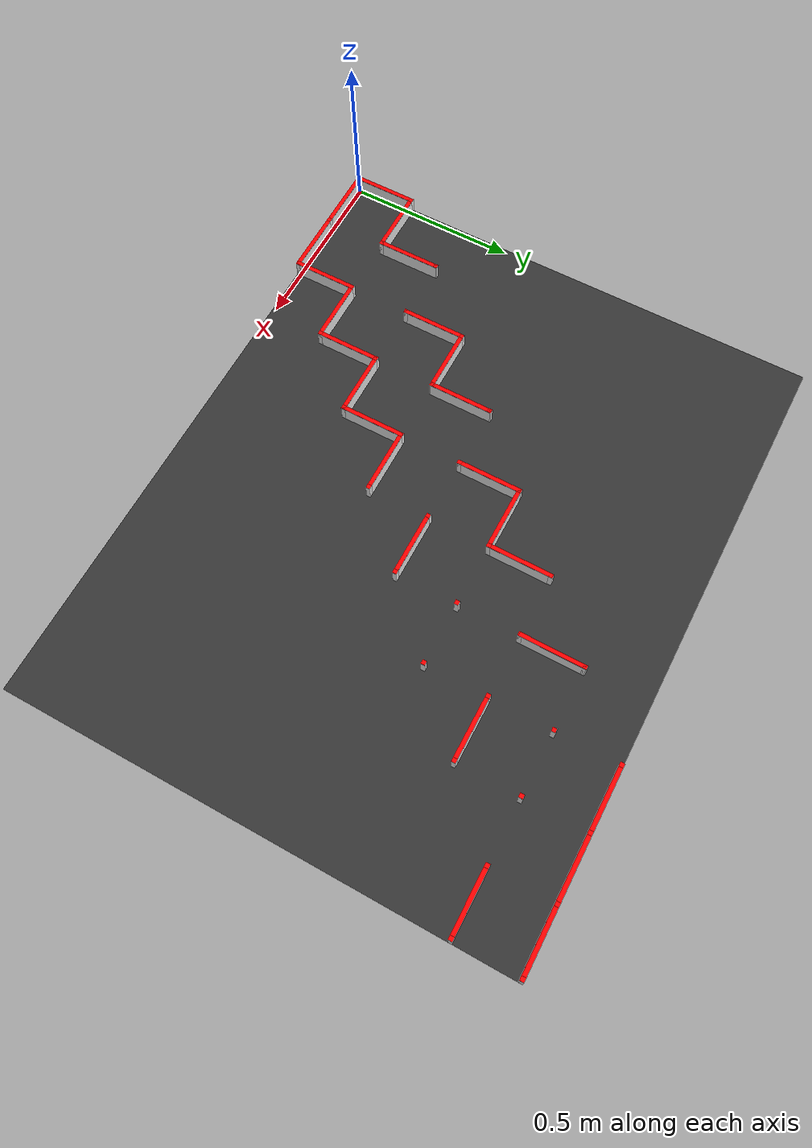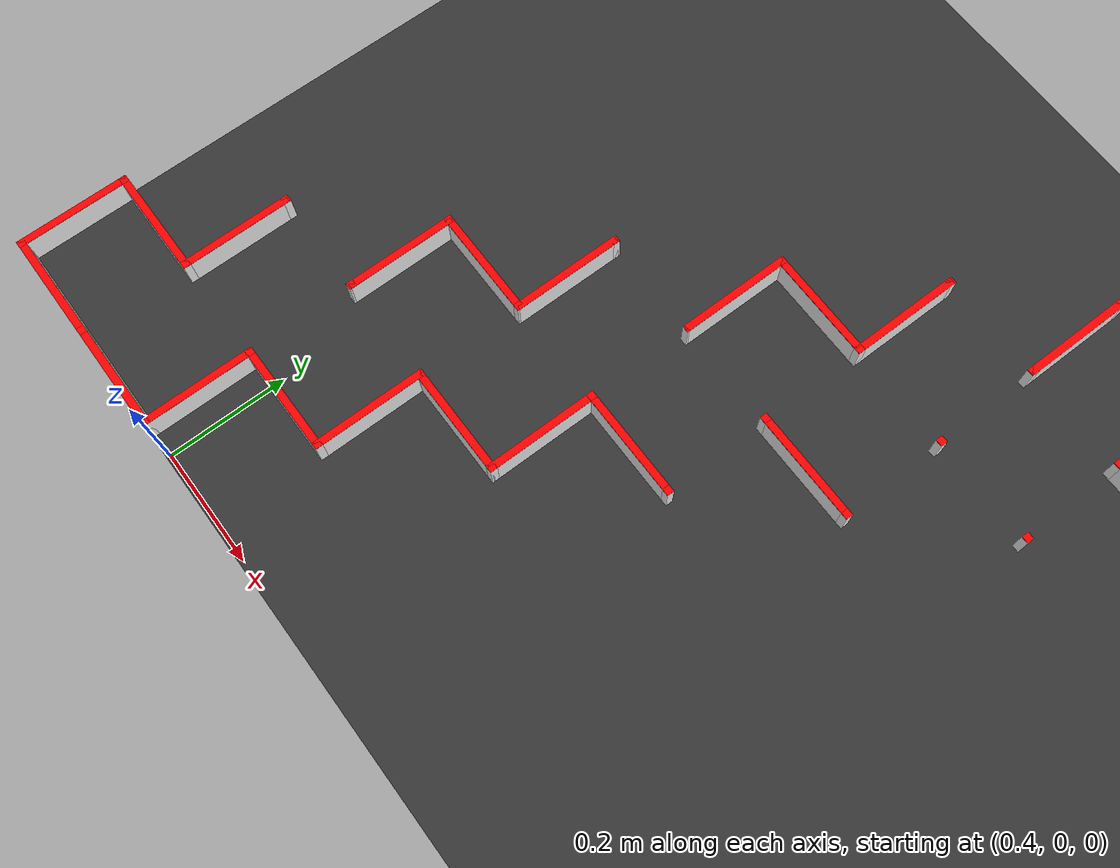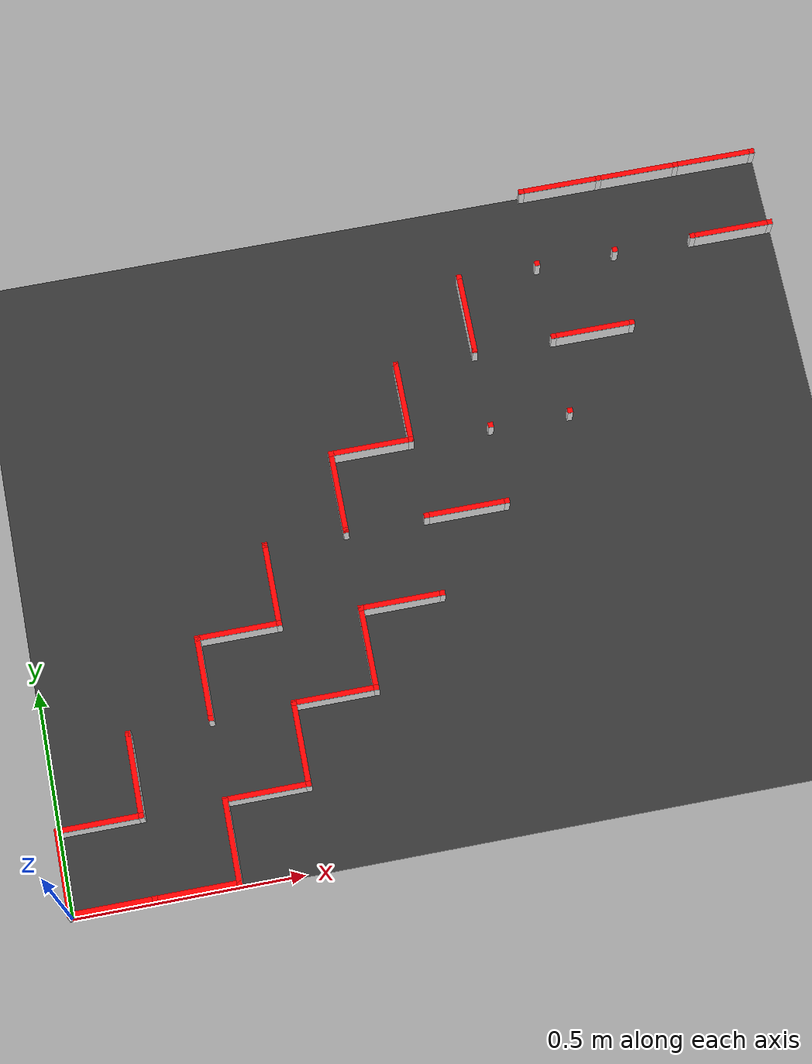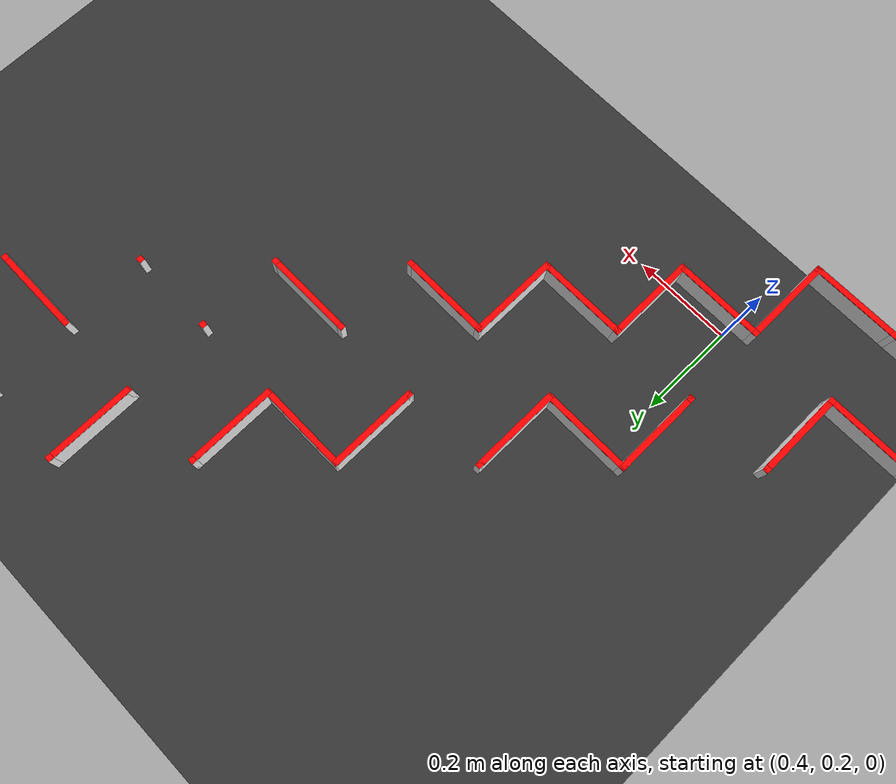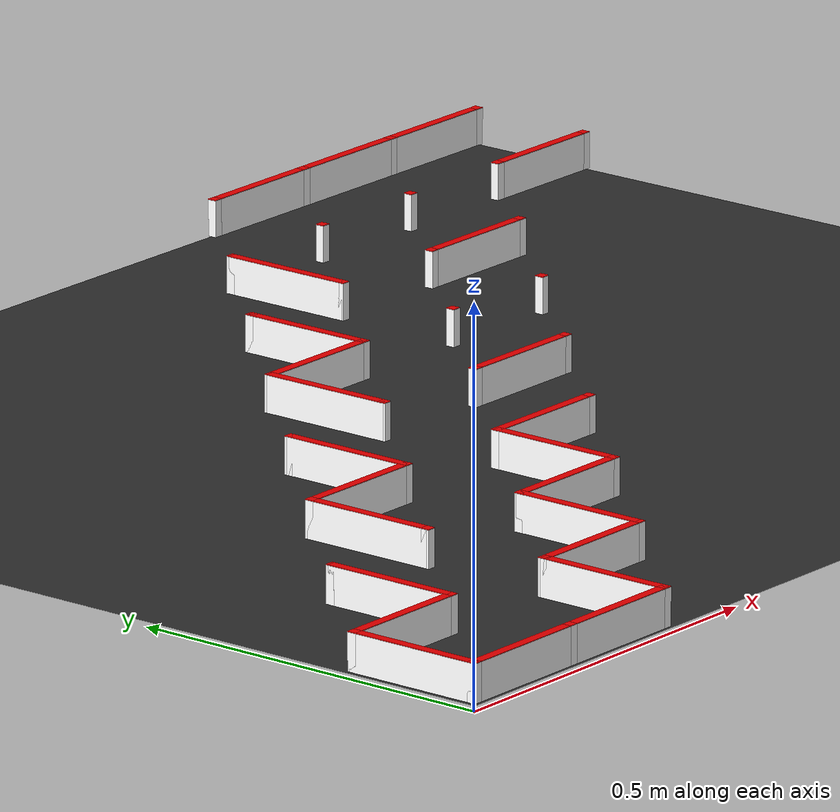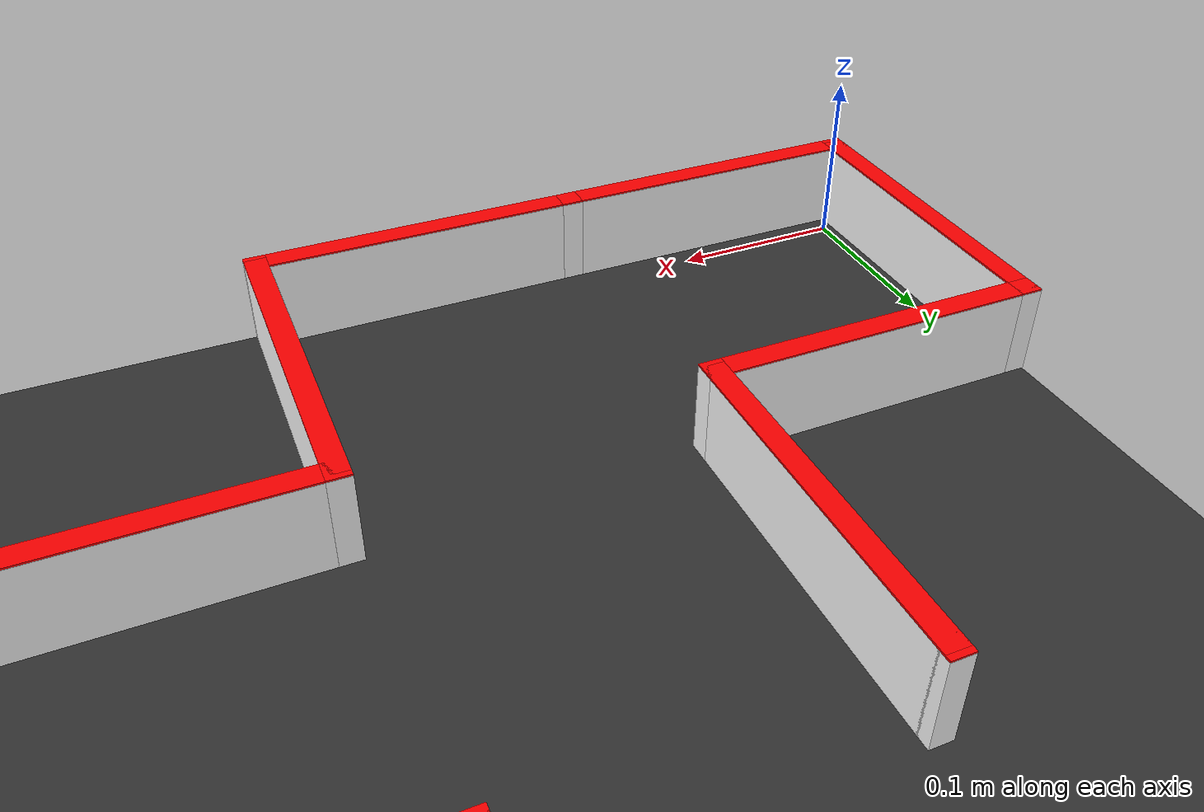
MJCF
<mujoco model="maze">
<worldbody>
    <body name="base_plate" pos="0.8999999999999999 0.72 0.012">
    <geom type="plane" mass="0.1" size="0.9059999999999999 0.726 0.006" rgba="0.2 0.2 0.2 1" friction="0.0 0.0 0.0"/>
    </body>

    <!-- Column 1-->
    <body pos="0.0 0.0 0.037">
        <body pos="0 0 -0.0005">
            <geom type="box" mass="0.01" size="0.006 0.006 0.0245" rgba="1 1 1 1"/>
        </body>

        <body pos="0 0 0.0245">
            <geom type="box" mass="0.01" size="0.006 0.006 0.0005" rgba="1 0 0 1"/>
        </body>
    </body>

    <!-- Column 2-->
    <body pos="0.18 0.0 0.037">
        <body pos="0 0 -0.0005">
            <geom type="box" mass="0.01" size="0.006 0.006 0.0245" rgba="1 1 1 1"/>
        </body>

        <body pos="0 0 0.0245">
            <geom type="box" mass="0.01" size="0.006 0.006 0.0005" rgba="1 0 0 1"/>
        </body>
    </body>

    <!-- Column 3-->
    <body pos="0.36 0.0 0.037">
        <body pos="0 0 -0.0005">
            <geom type="box" mass="0.01" size="0.006 0.006 0.0245" rgba="1 1 1 1"/>
        </body>

        <body pos="0 0 0.0245">
            <geom type="box" mass="0.01" size="0.006 0.006 0.0005" rgba="1 0 0 1"/>
        </body>
    </body>

    <!-- Column 12-->
    <body pos="0.0 0.18 0.037">
        <body pos="0 0 -0.0005">
            <geom type="box" mass="0.01" size="0.006 0.006 0.0245" rgba="1 1 1 1"/>
        </body>

        <body pos="0 0 0.0245">
            <geom type="box" mass="0.01" size="0.006 0.006 0.0005" rgba="1 0 0 1"/>
        </body>
    </body>

    <!-- Column 13-->
    <body pos="0.18 0.18 0.037">
        <body pos="0 0 -0.0005">
            <geom type="box" mass="0.01" size="0.006 0.006 0.0245" rgba="1 1 1 1"/>
        </body>

        <body pos="0 0 0.0245">
            <geom type="box" mass="0.01" size="0.006 0.006 0.0005" rgba="1 0 0 1"/>
        </body>
    </body>

    <!-- Column 14-->
    <body pos="0.36 0.18 0.037">
        <body pos="0 0 -0.0005">
            <geom type="box" mass="0.01" size="0.006 0.006 0.0245" rgba="1 1 1 1"/>
        </body>

        <body pos="0 0 0.0245">
            <geom type="box" mass="0.01" size="0.006 0.006 0.0005" rgba="1 0 0 1"/>
        </body>
    </body>

    <!-- Column 15-->
    <body pos="0.54 0.18 0.037">
        <body pos="0 0 -0.0005">
            <geom type="box" mass="0.01" size="0.006 0.006 0.0245" rgba="1 1 1 1"/>
        </body>

        <body pos="0 0 0.0245">
            <geom type="box" mass="0.01" size="0.006 0.006 0.0005" rgba="1 0 0 1"/>
        </body>
    </body>

    <!-- Column 24-->
    <body pos="0.18 0.36 0.037">
        <body pos="0 0 -0.0005">
            <geom type="box" mass="0.01" size="0.006 0.006 0.0245" rgba="1 1 1 1"/>
        </body>

        <body pos="0 0 0.0245">
            <geom type="box" mass="0.01" size="0.006 0.006 0.0005" rgba="1 0 0 1"/>
        </body>
    </body>

    <!-- Column 25-->
    <body pos="0.36 0.36 0.037">
        <body pos="0 0 -0.0005">
            <geom type="box" mass="0.01" size="0.006 0.006 0.0245" rgba="1 1 1 1"/>
        </body>

        <body pos="0 0 0.0245">
            <geom type="box" mass="0.01" size="0.006 0.006 0.0005" rgba="1 0 0 1"/>
        </body>
    </body>

    <!-- Column 26-->
    <body pos="0.54 0.36 0.037">
        <body pos="0 0 -0.0005">
            <geom type="box" mass="0.01" size="0.006 0.006 0.0245" rgba="1 1 1 1"/>
        </body>

        <body pos="0 0 0.0245">
            <geom type="box" mass="0.01" size="0.006 0.006 0.0005" rgba="1 0 0 1"/>
        </body>
    </body>

    <!-- Column 27-->
    <body pos="0.72 0.36 0.037">
        <body pos="0 0 -0.0005">
            <geom type="box" mass="0.01" size="0.006 0.006 0.0245" rgba="1 1 1 1"/>
        </body>

        <body pos="0 0 0.0245">
            <geom type="box" mass="0.01" size="0.006 0.006 0.0005" rgba="1 0 0 1"/>
        </body>
    </body>

    <!-- Column 36-->
    <body pos="0.36 0.54 0.037">
        <body pos="0 0 -0.0005">
            <geom type="box" mass="0.01" size="0.006 0.006 0.0245" rgba="1 1 1 1"/>
        </body>

        <body pos="0 0 0.0245">
            <geom type="box" mass="0.01" size="0.006 0.006 0.0005" rgba="1 0 0 1"/>
        </body>
    </body>

    <!-- Column 37-->
    <body pos="0.54 0.54 0.037">
        <body pos="0 0 -0.0005">
            <geom type="box" mass="0.01" size="0.006 0.006 0.0245" rgba="1 1 1 1"/>
        </body>

        <body pos="0 0 0.0245">
            <geom type="box" mass="0.01" size="0.006 0.006 0.0005" rgba="1 0 0 1"/>
        </body>
    </body>

    <!-- Column 38-->
    <body pos="0.72 0.54 0.037">
        <body pos="0 0 -0.0005">
            <geom type="box" mass="0.01" size="0.006 0.006 0.0245" rgba="1 1 1 1"/>
        </body>

        <body pos="0 0 0.0245">
            <geom type="box" mass="0.01" size="0.006 0.006 0.0005" rgba="1 0 0 1"/>
        </body>
    </body>

    <!-- Column 39-->
    <body pos="0.8999999999999999 0.54 0.037">
        <body pos="0 0 -0.0005">
            <geom type="box" mass="0.01" size="0.006 0.006 0.0245" rgba="1 1 1 1"/>
        </body>

        <body pos="0 0 0.0245">
            <geom type="box" mass="0.01" size="0.006 0.006 0.0005" rgba="1 0 0 1"/>
        </body>
    </body>

    <!-- Column 48-->
    <body pos="0.54 0.72 0.037">
        <body pos="0 0 -0.0005">
            <geom type="box" mass="0.01" size="0.006 0.006 0.0245" rgba="1 1 1 1"/>
        </body>

        <body pos="0 0 0.0245">
            <geom type="box" mass="0.01" size="0.006 0.006 0.0005" rgba="1 0 0 1"/>
        </body>
    </body>

    <!-- Column 49-->
    <body pos="0.72 0.72 0.037">
        <body pos="0 0 -0.0005">
            <geom type="box" mass="0.01" size="0.006 0.006 0.0245" rgba="1 1 1 1"/>
        </body>

        <body pos="0 0 0.0245">
            <geom type="box" mass="0.01" size="0.006 0.006 0.0005" rgba="1 0 0 1"/>
        </body>
    </body>

    <!-- Column 50-->
    <body pos="0.8999999999999999 0.72 0.037">
        <body pos="0 0 -0.0005">
            <geom type="box" mass="0.01" size="0.006 0.006 0.0245" rgba="1 1 1 1"/>
        </body>

        <body pos="0 0 0.0245">
            <geom type="box" mass="0.01" size="0.006 0.006 0.0005" rgba="1 0 0 1"/>
        </body>
    </body>

    <!-- Column 51-->
    <body pos="1.08 0.72 0.037">
        <body pos="0 0 -0.0005">
            <geom type="box" mass="0.01" size="0.006 0.006 0.0245" rgba="1 1 1 1"/>
        </body>

        <body pos="0 0 0.0245">
            <geom type="box" mass="0.01" size="0.006 0.006 0.0005" rgba="1 0 0 1"/>
        </body>
    </body>

    <!-- Column 60-->
    <body pos="0.72 0.8999999999999999 0.037">
        <body pos="0 0 -0.0005">
            <geom type="box" mass="0.01" size="0.006 0.006 0.0245" rgba="1 1 1 1"/>
        </body>

        <body pos="0 0 0.0245">
            <geom type="box" mass="0.01" size="0.006 0.006 0.0005" rgba="1 0 0 1"/>
        </body>
    </body>

    <!-- Column 61-->
    <body pos="0.8999999999999999 0.8999999999999999 0.037">
        <body pos="0 0 -0.0005">
            <geom type="box" mass="0.01" size="0.006 0.006 0.0245" rgba="1 1 1 1"/>
        </body>

        <body pos="0 0 0.0245">
            <geom type="box" mass="0.01" size="0.006 0.006 0.0005" rgba="1 0 0 1"/>
        </body>
    </body>

    <!-- Column 62-->
    <body pos="1.08 0.8999999999999999 0.037">
        <body pos="0 0 -0.0005">
            <geom type="box" mass="0.01" size="0.006 0.006 0.0245" rgba="1 1 1 1"/>
        </body>

        <body pos="0 0 0.0245">
            <geom type="box" mass="0.01" size="0.006 0.006 0.0005" rgba="1 0 0 1"/>
        </body>
    </body>

    <!-- Column 63-->
    <body pos="1.26 0.8999999999999999 0.037">
        <body pos="0 0 -0.0005">
            <geom type="box" mass="0.01" size="0.006 0.006 0.0245" rgba="1 1 1 1"/>
        </body>

        <body pos="0 0 0.0245">
            <geom type="box" mass="0.01" size="0.006 0.006 0.0005" rgba="1 0 0 1"/>
        </body>
    </body>

    <!-- Column 72-->
    <body pos="0.8999999999999999 1.08 0.037">
        <body pos="0 0 -0.0005">
            <geom type="box" mass="0.01" size="0.006 0.006 0.0245" rgba="1 1 1 1"/>
        </body>

        <body pos="0 0 0.0245">
            <geom type="box" mass="0.01" size="0.006 0.006 0.0005" rgba="1 0 0 1"/>
        </body>
    </body>

    <!-- Column 73-->
    <body pos="1.08 1.08 0.037">
        <body pos="0 0 -0.0005">
            <geom type="box" mass="0.01" size="0.006 0.006 0.0245" rgba="1 1 1 1"/>
        </body>

        <body pos="0 0 0.0245">
            <geom type="box" mass="0.01" size="0.006 0.006 0.0005" rgba="1 0 0 1"/>
        </body>
    </body>

    <!-- Column 74-->
    <body pos="1.26 1.08 0.037">
        <body pos="0 0 -0.0005">
            <geom type="box" mass="0.01" size="0.006 0.006 0.0245" rgba="1 1 1 1"/>
        </body>

        <body pos="0 0 0.0245">
            <geom type="box" mass="0.01" size="0.006 0.006 0.0005" rgba="1 0 0 1"/>
        </body>
    </body>

    <!-- Column 75-->
    <body pos="1.44 1.08 0.037">
        <body pos="0 0 -0.0005">
            <geom type="box" mass="0.01" size="0.006 0.006 0.0245" rgba="1 1 1 1"/>
        </body>

        <body pos="0 0 0.0245">
            <geom type="box" mass="0.01" size="0.006 0.006 0.0005" rgba="1 0 0 1"/>
        </body>
    </body>

    <!-- Column 84-->
    <body pos="1.08 1.26 0.037">
        <body pos="0 0 -0.0005">
            <geom type="box" mass="0.01" size="0.006 0.006 0.0245" rgba="1 1 1 1"/>
        </body>

        <body pos="0 0 0.0245">
            <geom type="box" mass="0.01" size="0.006 0.006 0.0005" rgba="1 0 0 1"/>
        </body>
    </body>

    <!-- Column 85-->
    <body pos="1.26 1.26 0.037">
        <body pos="0 0 -0.0005">
            <geom type="box" mass="0.01" size="0.006 0.006 0.0245" rgba="1 1 1 1"/>
        </body>

        <body pos="0 0 0.0245">
            <geom type="box" mass="0.01" size="0.006 0.006 0.0005" rgba="1 0 0 1"/>
        </body>
    </body>

    <!-- Column 86-->
    <body pos="1.44 1.26 0.037">
        <body pos="0 0 -0.0005">
            <geom type="box" mass="0.01" size="0.006 0.006 0.0245" rgba="1 1 1 1"/>
        </body>

        <body pos="0 0 0.0245">
            <geom type="box" mass="0.01" size="0.006 0.006 0.0005" rgba="1 0 0 1"/>
        </body>
    </body>

    <!-- Column 87-->
    <body pos="1.6199999999999999 1.26 0.037">
        <body pos="0 0 -0.0005">
            <geom type="box" mass="0.01" size="0.006 0.006 0.0245" rgba="1 1 1 1"/>
        </body>

        <body pos="0 0 0.0245">
            <geom type="box" mass="0.01" size="0.006 0.006 0.0005" rgba="1 0 0 1"/>
        </body>
    </body>

    <!-- Column 88-->
    <body pos="1.7999999999999998 1.26 0.037">
        <body pos="0 0 -0.0005">
            <geom type="box" mass="0.01" size="0.006 0.006 0.0245" rgba="1 1 1 1"/>
        </body>

        <body pos="0 0 0.0245">
            <geom type="box" mass="0.01" size="0.006 0.006 0.0005" rgba="1 0 0 1"/>
        </body>
    </body>

    <!-- Column 96-->
    <body pos="1.26 1.44 0.037">
        <body pos="0 0 -0.0005">
            <geom type="box" mass="0.01" size="0.006 0.006 0.0245" rgba="1 1 1 1"/>
        </body>

        <body pos="0 0 0.0245">
            <geom type="box" mass="0.01" size="0.006 0.006 0.0005" rgba="1 0 0 1"/>
        </body>
    </body>

    <!-- Column 97-->
    <body pos="1.44 1.44 0.037">
        <body pos="0 0 -0.0005">
            <geom type="box" mass="0.01" size="0.006 0.006 0.0245" rgba="1 1 1 1"/>
        </body>

        <body pos="0 0 0.0245">
            <geom type="box" mass="0.01" size="0.006 0.006 0.0005" rgba="1 0 0 1"/>
        </body>
    </body>

    <!-- Column 98-->
    <body pos="1.6199999999999999 1.44 0.037">
        <body pos="0 0 -0.0005">
            <geom type="box" mass="0.01" size="0.006 0.006 0.0245" rgba="1 1 1 1"/>
        </body>

        <body pos="0 0 0.0245">
            <geom type="box" mass="0.01" size="0.006 0.006 0.0005" rgba="1 0 0 1"/>
        </body>
    </body>

    <!-- Column 99-->
    <body pos="1.7999999999999998 1.44 0.037">
        <body pos="0 0 -0.0005">
            <geom type="box" mass="0.01" size="0.006 0.006 0.0245" rgba="1 1 1 1"/>
        </body>

        <body pos="0 0 0.0245">
            <geom type="box" mass="0.01" size="0.006 0.006 0.0005" rgba="1 0 0 1"/>
        </body>
    </body>

    <body pos="0.09 0.0 0.037">
        <body pos="0 0 -0.0005">
            <geom type="box" mass="0.01" size="0.084 0.006 0.0245" rgba="1 1 1 1"/>
        </body>

        <body pos="0 0 0.0245">
            <geom type="box" mass="0.01" size="0.084 0.006 0.0005" rgba="1 0 0 1"/>
        </body>
    </body>

  <body pos="0.27 0.0 0.037">
      <body pos="0 0 -0.0005">
          <geom type="box" mass="0.01" size="0.084 0.006 0.0245" rgba="1 1 1 1"/>
      </body>

      <body pos="0 0 0.0245">
          <geom type="box" mass="0.01" size="0.084 0.006 0.0005" rgba="1 0 0 1"/>
      </body>
  </body>

            <body pos="0.09 0.18 0.037">
      <body pos="0 0 -0.0005">
          <geom type="box" mass="0.01" size="0.084 0.006 0.0245" rgba="1 1 1 1"/>
      </body>

      <body pos="0 0 0.0245">
          <geom type="box" mass="0.01" size="0.084 0.006 0.0005" rgba="1 0 0 1"/>
      </body>
  </body>

  <body pos="0.44999999999999996 0.18 0.037">
      <body pos="0 0 -0.0005">
          <geom type="box" mass="0.01" size="0.084 0.006 0.0245" rgba="1 1 1 1"/>
      </body>

      <body pos="0 0 0.0245">
          <geom type="box" mass="0.01" size="0.084 0.006 0.0005" rgba="1 0 0 1"/>
      </body>
  </body>

  <body pos="0.63 0.36 0.037">
      <body pos="0 0 -0.0005">
          <geom type="box" mass="0.01" size="0.084 0.006 0.0245" rgba="1 1 1 1"/>
      </body>

      <body pos="0 0 0.0245">
          <geom type="box" mass="0.01" size="0.084 0.006 0.0005" rgba="1 0 0 1"/>
      </body>
  </body>

  <body pos="0.44999999999999996 0.54 0.037">
      <body pos="0 0 -0.0005">
          <geom type="box" mass="0.01" size="0.084 0.006 0.0245" rgba="1 1 1 1"/>
      </body>

      <body pos="0 0 0.0245">
          <geom type="box" mass="0.01" size="0.084 0.006 0.0005" rgba="1 0 0 1"/>
      </body>
  </body>

  <body pos="0.8099999999999999 0.54 0.037">
      <body pos="0 0 -0.0005">
          <geom type="box" mass="0.01" size="0.084 0.006 0.0245" rgba="1 1 1 1"/>
      </body>

      <body pos="0 0 0.0245">
          <geom type="box" mass="0.01" size="0.084 0.006 0.0005" rgba="1 0 0 1"/>
      </body>
  </body>

  <body pos="0.9899999999999999 0.72 0.037">
      <body pos="0 0 -0.0005">
          <geom type="box" mass="0.01" size="0.084 0.006 0.0245" rgba="1 1 1 1"/>
      </body>

      <body pos="0 0 0.0245">
          <geom type="box" mass="0.01" size="0.084 0.006 0.0005" rgba="1 0 0 1"/>
      </body>
  </body>

  <body pos="0.8099999999999999 0.8999999999999999 0.037">
      <body pos="0 0 -0.0005">
          <geom type="box" mass="0.01" size="0.084 0.006 0.0245" rgba="1 1 1 1"/>
      </body>

      <body pos="0 0 0.0245">
          <geom type="box" mass="0.01" size="0.084 0.006 0.0005" rgba="1 0 0 1"/>
      </body>
  </body>

  <body pos="1.35 1.08 0.037">
      <body pos="0 0 -0.0005">
          <geom type="box" mass="0.01" size="0.084 0.006 0.0245" rgba="1 1 1 1"/>
      </body>

      <body pos="0 0 0.0245">
          <geom type="box" mass="0.01" size="0.084 0.006 0.0005" rgba="1 0 0 1"/>
      </body>
  </body>

  <body pos="1.71 1.26 0.037">
      <body pos="0 0 -0.0005">
          <geom type="box" mass="0.01" size="0.084 0.006 0.0245" rgba="1 1 1 1"/>
      </body>

      <body pos="0 0 0.0245">
          <geom type="box" mass="0.01" size="0.084 0.006 0.0005" rgba="1 0 0 1"/>
      </body>
  </body>

  <body pos="1.35 1.44 0.037">
      <body pos="0 0 -0.0005">
          <geom type="box" mass="0.01" size="0.084 0.006 0.0245" rgba="1 1 1 1"/>
      </body>

      <body pos="0 0 0.0245">
          <geom type="box" mass="0.01" size="0.084 0.006 0.0005" rgba="1 0 0 1"/>
      </body>
  </body>

  <body pos="1.53 1.44 0.037">
      <body pos="0 0 -0.0005">
          <geom type="box" mass="0.01" size="0.084 0.006 0.0245" rgba="1 1 1 1"/>
      </body>

      <body pos="0 0 0.0245">
          <geom type="box" mass="0.01" size="0.084 0.006 0.0005" rgba="1 0 0 1"/>
      </body>
  </body>

  <body pos="1.71 1.44 0.037">
      <body pos="0 0 -0.0005">
          <geom type="box" mass="0.01" size="0.084 0.006 0.0245" rgba="1 1 1 1"/>
      </body>

      <body pos="0 0 0.0245">
          <geom type="box" mass="0.01" size="0.084 0.006 0.0005" rgba="1 0 0 1"/>
      </body>
  </body>

  <body pos="0.0 0.09 0.037">
      <body pos="0 0 -0.0005">
          <geom type="box" mass="0.01" size="0.006 0.093 0.0245" rgba="1 1 1 1"/>
      </body>

      <body pos="0 0 0.0245">
          <geom type="box" mass="0.01" size="0.006 0.093 0.0005" rgba="1 0 0 1"/>
      </body>
  </body>

  <body pos="0.36 0.09 0.037">
      <body pos="0 0 -0.0005">
          <geom type="box" mass="0.01" size="0.006 0.093 0.0245" rgba="1 1 1 1"/>
      </body>

      <body pos="0 0 0.0245">
          <geom type="box" mass="0.01" size="0.006 0.093 0.0005" rgba="1 0 0 1"/>
      </body>
  </body>

  <body pos="0.18 0.27 0.037">
      <body pos="0 0 -0.0005">
          <geom type="box" mass="0.01" size="0.006 0.093 0.0245" rgba="1 1 1 1"/>
      </body>

      <body pos="0 0 0.0245">
          <geom type="box" mass="0.01" size="0.006 0.093 0.0005" rgba="1 0 0 1"/>
      </body>
  </body>

  <body pos="0.54 0.27 0.037">
      <body pos="0 0 -0.0005">
          <geom type="box" mass="0.01" size="0.006 0.093 0.0245" rgba="1 1 1 1"/>
      </body>

      <body pos="0 0 0.0245">
          <geom type="box" mass="0.01" size="0.006 0.093 0.0005" rgba="1 0 0 1"/>
      </body>
  </body>

  <body pos="0.36 0.44999999999999996 0.037">
      <body pos="0 0 -0.0005">
          <geom type="box" mass="0.01" size="0.006 0.093 0.0245" rgba="1 1 1 1"/>
      </body>

      <body pos="0 0 0.0245">
          <geom type="box" mass="0.01" size="0.006 0.093 0.0005" rgba="1 0 0 1"/>
      </body>
  </body>

  <body pos="0.72 0.44999999999999996 0.037">
      <body pos="0 0 -0.0005">
          <geom type="box" mass="0.01" size="0.006 0.093 0.0245" rgba="1 1 1 1"/>
      </body>

      <body pos="0 0 0.0245">
          <geom type="box" mass="0.01" size="0.006 0.093 0.0005" rgba="1 0 0 1"/>
      </body>
  </body>

  <body pos="0.54 0.63 0.037">
      <body pos="0 0 -0.0005">
          <geom type="box" mass="0.01" size="0.006 0.093 0.0245" rgba="1 1 1 1"/>
      </body>

      <body pos="0 0 0.0245">
          <geom type="box" mass="0.01" size="0.006 0.093 0.0005" rgba="1 0 0 1"/>
      </body>
  </body>

  <body pos="0.72 0.8099999999999999 0.037">
      <body pos="0 0 -0.0005">
          <geom type="box" mass="0.01" size="0.006 0.093 0.0245" rgba="1 1 1 1"/>
      </body>

      <body pos="0 0 0.0245">
          <geom type="box" mass="0.01" size="0.006 0.093 0.0005" rgba="1 0 0 1"/>
      </body>
  </body>

  <body pos="0.8999999999999999 0.9899999999999999 0.037">
      <body pos="0 0 -0.0005">
          <geom type="box" mass="0.01" size="0.006 0.093 0.0245" rgba="1 1 1 1"/>
      </body>

      <body pos="0 0 0.0245">
          <geom type="box" mass="0.01" size="0.006 0.093 0.0005" rgba="1 0 0 1"/>
      </body>
  </body>

  <body pos="1.08 1.1700000000000002 0.037">
      <body pos="0 0 -0.0005">
          <geom type="box" mass="0.01" size="0.006 0.093 0.0245" rgba="1 1 1 1"/>
      </body>

      <body pos="0 0 0.0245">
          <geom type="box" mass="0.01" size="0.006 0.093 0.0005" rgba="1 0 0 1"/>
      </body>
  </body>
          </worldbody>
</mujoco>
